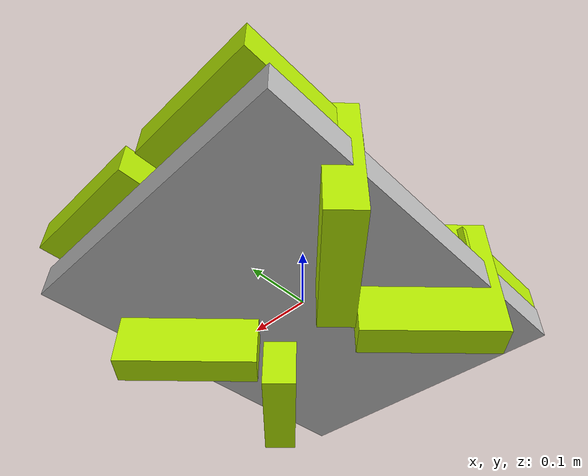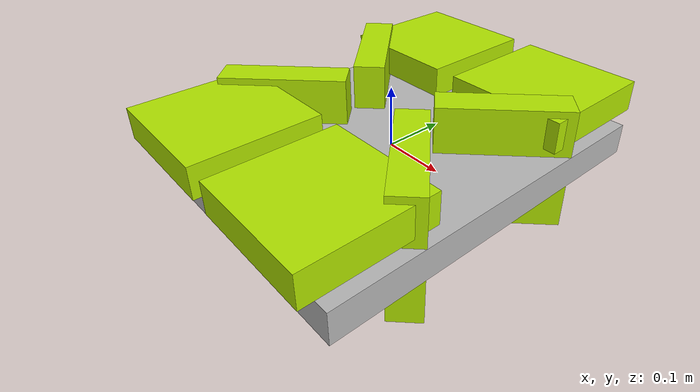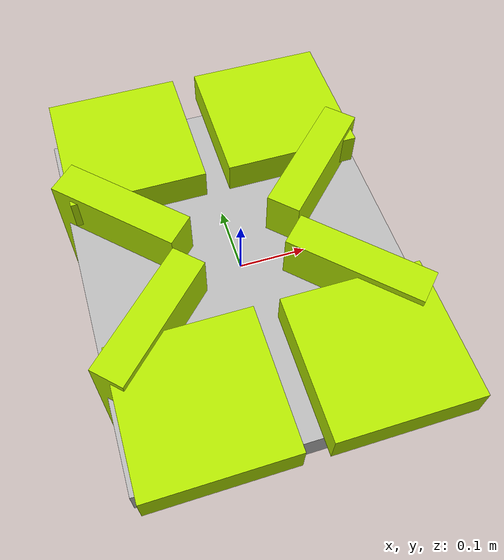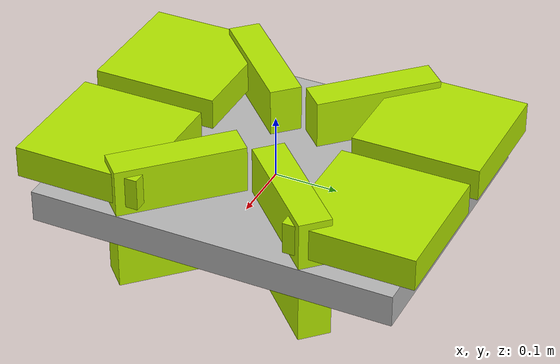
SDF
<?xml version='1.0' encoding='UTF-8'?>
<!-- Change all from gz-sim to ignition-gazebo-->
<!-- Change all to gz::sim to ignition::gazebo-->
<!-- Remove ArduPilotPlugin COMPLETELY-->
<!-- Add X150 Plugin -->
<sdf version="1.6">
  <model name="rov">
    <pose>0 0 0 0 0 0</pose>
    <!-- BlueROV2 thruster reference: http://www.ardusub.com/introduction/features.html -->
    <link name="base_link">
      <inertial>
        <pose>0.0 0.0 0.011 0 0 0</pose>
        <mass>13.0</mass>
        <inertia>
          <ixx>0.26</ixx>
          <ixy>0</ixy>
          <ixz>0</ixz>
          <iyy>0.23</iyy>
          <iyz>0</iyz>
          <izz>0.37</izz>
        </inertia>
      </inertial>

      <visual name="base_link_visual">
        <geometry>
          <box>
            <size>0.457 0.575 0.05</size>
          </box>
        </geometry>
      </visual>

      <!-- Collision volume * fluid_density == displaced mass, used by BuoyancyPlugin -->
      <collision name="base_link_collision">
        <pose>0.0 0.0 0.06 0 0 0</pose>
        <geometry>
          <box>
            <size>0.457 0.575 0.05</size>
          </box>
        </geometry>
      </collision>

      <!-- IMU sensor gyro and accel data -->
      <sensor name="imu_sensor" type="imu">
        <!-- Transform from the Gazebo body frame (x-forward, y-left, z-up)
             to the ArduPilot body frame (x-forward, y-right, z-down) -->
        <pose>0 0 0 3.142 0 0</pose>
        <always_on>1</always_on>
        <update_rate>10.0</update_rate>
      </sensor>

      <sensor name="X150" type="custom" ignition:type="X150">
        <always_on>0</always_on>
        <update_rate>0.1</update_rate>
        <visualize>true</visualize>
        <topic>/model/rov/X150_sim</topic>
        <ignition:X150>
          <noise type="gaussian">
            <mean>0.00001</mean>
            <stddev>0.00001</stddev>
          </noise>
        </ignition:X150>
      </sensor>

    </link>

    <!-- Hydrodynamics plugin -->
    <plugin
        filename="ignition-gazebo-hydrodynamics-system"
        name="ignition::gazebo::systems::Hydrodynamics">
      <link_name>base_link</link_name>
      <water_density>1000.0</water_density>
      <!-- Added mass: -->
      <xDotU>0</xDotU>
      <yDotV>0</yDotV>
      <zDotW>0</zDotW>
      <kDotP>0</kDotP>
      <mDotQ>0</mDotQ>
      <nDotR>0</nDotR>
      <!-- First order stability derivative: -->
      <xU>0</xU>
      <yV>0</yV>
      <zW>0</zW>
      <kP>0</kP>
      <mQ>0</mQ>
      <nR>0</nR>
      <!-- Second order stability derivative: -->
      <xUabsU>-58.42</xUabsU>
      <yVabsV>-55.137</yVabsV>
      <zWabsW>-124.818</zWabsW>
      <kPabsP>-4.0</kPabsP>
      <mQabsQ>-4.0</mQabsQ>
      <nRabsR>-4.0</nRabsR>
    </plugin>

    <plugin filename="ignition-gazebo-pose-publisher-system" name="ignition::gazebo::systems::PosePublisher">
      <publish_link_pose>false</publish_link_pose>
      <publish_collision_pose>false</publish_collision_pose>
      <publish_visual_pose>false</publish_visual_pose>
      <publish_sensor_pose>false</publish_sensor_pose>
      <publish_nested_model_pose>true</publish_nested_model_pose>
      <update_frequency>20</update_frequency>
      <use_pose_vector_msg>false</use_pose_vector_msg>
    </plugin>

    <link name="thruster1">
      <pose>0.14 -0.092 0.0 -1.571 1.571 -0.785</pose>
      <visual name="thruster_prop_visual">
        <pose>0 0 0 -1.571 0 0</pose>
        <geometry>
          <box>
            <size>0.2 0.05 0.2</size>
          </box>
        </geometry>
        <material>
          <ambient>0.5 0.75 0 1</ambient>
          <diffuse>0.7 0.9 0 1</diffuse>
          <emissive>0.1 0 0.1 1</emissive>
        </material>
      </visual>
      <inertial>
        <mass>0.002</mass>
        <inertia>
          <ixx>0.001</ixx>
          <ixy>0</ixy>
          <ixz>0</ixz>
          <iyy>0.001</iyy>
          <iyz>0</iyz>
          <izz>0.001</izz>
        </inertia>
      </inertial>
    </link>

    <link name="thruster2">
      <pose>0.14 0.092 0.0 -1.571 1.571 -2.356</pose>
      <visual name="thruster_prop_visual">
        <pose>0 0 0 -1.571 0 0</pose>
        <geometry>
          <box>
            <size>0.2 0.05 0.2</size>
          </box>
        </geometry>
        <material>
          <ambient>0.5 0.75 0 1</ambient>
          <diffuse>0.7 0.9 0 1</diffuse>
          <emissive>0.1 0 0.1 1</emissive>
        </material>
      </visual>
      <inertial>
        <mass>0.002</mass>
        <inertia>
          <ixx>0.001</ixx>
          <ixy>0</ixy>
          <ixz>0</ixz>
          <iyy>0.001</iyy>
          <iyz>0</iyz>
          <izz>0.001</izz>
        </inertia>
      </inertial>
    </link>

    <link name="thruster3">
      <pose>-0.15 -0.092 0.0 -1.571 1.571 0.785</pose>
      <visual name="thruster_prop_visual">
        <pose>0 0 0 1.571 0 0</pose>
        <geometry>
          <box>
            <size>0.2 0.05 0.2</size>
          </box>
        </geometry>
        <material>
          <ambient>0.5 0.75 0 1</ambient>
          <diffuse>0.7 0.9 0 1</diffuse>
          <emissive>0.1 0 0.1 1</emissive>
        </material>
      </visual>
      <inertial>
        <mass>0.002</mass>
        <inertia>
          <ixx>0.001</ixx>
          <ixy>0</ixy>
          <ixz>0</ixz>
          <iyy>0.001</iyy>
          <iyz>0</iyz>
          <izz>0.001</izz>
        </inertia>
      </inertial>
    </link>

    <link name="thruster4">
      <pose>-0.15 0.092 0.0 -1.571 1.571 2.356</pose>
      <visual name="thruster_prop_visual">
        <pose>0 0 0 1.571 0 0</pose>
        <geometry>
          <box>
            <size>0.2 0.05 0.2</size>
          </box>
        </geometry>
        <material>
          <ambient>0.5 0.75 0 1</ambient>
          <diffuse>0.7 0.9 0 1</diffuse>
          <emissive>0.1 0 0.1 1</emissive>
        </material>
      </visual>
      <inertial>
        <mass>0.002</mass>
        <inertia>
          <ixx>0.001</ixx>
          <ixy>0</ixy>
          <ixz>0</ixz>
          <iyy>0.001</iyy>
          <iyz>0</iyz>
          <izz>0.001</izz>
        </inertia>
      </inertial>
    </link>

    <link name="thruster5">
      <pose>0.118 -0.215 0.064 0 0 0</pose>
      <visual name="thruster_prop_visual">
        <pose>0 0 0 -1.571 0 1.571</pose>
        <geometry>
          <box>
            <size>0.2 0.05 0.2</size>
          </box>
        </geometry>
        <material>
          <ambient>0.5 0.75 0 1</ambient>
          <diffuse>0.7 0.9 0 1</diffuse>
          <emissive>0.1 0 0.1 1</emissive>
        </material>
      </visual>
      <inertial>
        <mass>0.002</mass>
        <inertia>
          <ixx>0.001</ixx>
          <ixy>0</ixy>
          <ixz>0</ixz>
          <iyy>0.001</iyy>
          <iyz>0</iyz>
          <izz>0.001</izz>
        </inertia>
      </inertial>
    </link>

    <link name="thruster6">
      <pose>0.118 0.215 0.064 0 0 0</pose>
      <visual name="thruster_prop_visual">
        <pose>0 0 0 1.571 0 1.571</pose>
        <geometry>
          <box>
            <size>0.2 0.05 0.2</size>
          </box>
        </geometry>
        <material>
          <ambient>0.5 0.75 0 1</ambient>
          <diffuse>0.7 0.9 0 1</diffuse>
          <emissive>0.1 0 0.1 1</emissive>
        </material>
      </visual>
      <inertial>
        <mass>0.002</mass>
        <inertia>
          <ixx>0.001</ixx>
          <ixy>0</ixy>
          <ixz>0</ixz>
          <iyy>0.001</iyy>
          <iyz>0</iyz>
          <izz>0.001</izz>
        </inertia>
      </inertial>
    </link>

    <link name="thruster7">
      <pose>-0.118 -0.215 0.064 0 0 0</pose>
      <visual name="thruster_prop_visual">
        <pose>0 0 0 1.571 0 1.571</pose>
        <geometry>
          <box>
            <size>0.2 0.05 0.2</size>
          </box>
        </geometry>
        <material>
          <ambient>0.5 0.75 0 1</ambient>
          <diffuse>0.7 0.9 0 1</diffuse>
          <emissive>0.1 0 0.1 1</emissive>
        </material>
      </visual>
      <inertial>
        <mass>0.002</mass>
        <inertia>
          <ixx>0.001</ixx>
          <ixy>0</ixy>
          <ixz>0</ixz>
          <iyy>0.001</iyy>
          <iyz>0</iyz>
          <izz>0.001</izz>
        </inertia>
      </inertial>
    </link>

    <link name="thruster8">
      <pose>-0.118 0.215 0.064 0 0 0</pose>
      <visual name="thruster_prop_visual">
        <pose>0 0 0 -1.571 0 1.571</pose>
        <geometry>
          <box>
            <size>0.2 0.05 0.2</size>
          </box>
        </geometry>
        <material>
          <ambient>0.5 0.75 0 1</ambient>
          <diffuse>0.7 0.9 0 1</diffuse>
          <emissive>0.1 0 0.1 1</emissive>
        </material>
      </visual>
      <inertial>
        <mass>0.002</mass>
        <inertia>
          <ixx>0.001</ixx>
          <ixy>0</ixy>
          <ixz>0</ixz>
          <iyy>0.001</iyy>
          <iyz>0</iyz>
          <izz>0.001</izz>
        </inertia>
      </inertial>
    </link>

    <joint name="thruster1_joint" type="revolute">
      <parent>base_link</parent>
      <child>thruster1</child>
      <axis>
        <xyz>0 0 -1</xyz>
      </axis>
    </joint>

    <joint name="thruster2_joint" type="revolute">
      <parent>base_link</parent>
      <child>thruster2</child>
      <axis>
        <xyz>0 0 -1</xyz>
      </axis>
    </joint>

    <joint name="thruster3_joint" type="revolute">
      <parent>base_link</parent>
      <child>thruster3</child>
      <axis>
        <xyz>0 0 -1</xyz>
      </axis>
    </joint>

    <joint name="thruster4_joint" type="revolute">
      <parent>base_link</parent>
      <child>thruster4</child>
      <axis>
        <xyz>0 0 -1</xyz>
      </axis>
    </joint>

    <joint name="thruster5_joint" type="revolute">
      <parent>base_link</parent>
      <child>thruster5</child>
      <axis>
        <xyz>0 0 -1</xyz>
      </axis>
    </joint>

    <joint name="thruster6_joint" type="revolute">
      <parent>base_link</parent>
      <child>thruster6</child>
      <axis>
        <xyz>0 0 -1</xyz>
      </axis>
    </joint>

    <joint name="thruster7_joint" type="revolute">
      <parent>base_link</parent>
      <child>thruster7</child>
      <axis>
        <xyz>0 0 -1</xyz>
      </axis>
    </joint>

    <joint name="thruster8_joint" type="revolute">
      <parent>base_link</parent>
      <child>thruster8</child>
      <axis>
        <xyz>0 0 -1</xyz>
      </axis>
    </joint>

    <plugin
        filename="ignition-gazebo-thruster-system"
        name="ignition::gazebo::systems::Thruster">
      <namespace>rov</namespace>
      <joint_name>thruster1_joint</joint_name>
      <thrust_coefficient>0.02</thrust_coefficient>
      <fluid_density>1000.0</fluid_density>
      <propeller_diameter>0.1</propeller_diameter>
      <velocity_control>true</velocity_control>
      <use_angvel_cmd>False</use_angvel_cmd>
    </plugin>

    <plugin
        filename="ignition-gazebo-thruster-system"
        name="ignition::gazebo::systems::Thruster">
      <namespace>rov</namespace>
      <joint_name>thruster2_joint</joint_name>
      <thrust_coefficient>0.02</thrust_coefficient>
      <fluid_density>1000.0</fluid_density>
      <propeller_diameter>0.1</propeller_diameter>
      <velocity_control>true</velocity_control>
      <use_angvel_cmd>False</use_angvel_cmd>
    </plugin>

    <plugin
        filename="ignition-gazebo-thruster-system"
        name="ignition::gazebo::systems::Thruster">
      <namespace>rov</namespace>
      <joint_name>thruster3_joint</joint_name>
      <!-- Reverse spin to balance torque -->
      <thrust_coefficient>-0.02</thrust_coefficient>
      <fluid_density>1000.0</fluid_density>
      <propeller_diameter>0.1</propeller_diameter>
      <velocity_control>true</velocity_control>
      <use_angvel_cmd>False</use_angvel_cmd>
    </plugin>

    <plugin
        filename="ignition-gazebo-thruster-system"
        name="ignition::gazebo::systems::Thruster">
      <namespace>rov</namespace>
      <joint_name>thruster4_joint</joint_name>
      <!-- Reverse spin to balance torque -->
      <thrust_coefficient>-0.02</thrust_coefficient>
      <fluid_density>1000.0</fluid_density>
      <propeller_diameter>0.1</propeller_diameter>
      <velocity_control>true</velocity_control>
      <use_angvel_cmd>False</use_angvel_cmd>
    </plugin>

    <plugin
        filename="ignition-gazebo-thruster-system"
        name="ignition::gazebo::systems::Thruster">
      <namespace>rov</namespace>
      <joint_name>thruster5_joint</joint_name>
      <thrust_coefficient>0.02</thrust_coefficient>
      <fluid_density>1000.0</fluid_density>
      <propeller_diameter>0.1</propeller_diameter>
      <velocity_control>true</velocity_control>
      <use_angvel_cmd>False</use_angvel_cmd>
    </plugin>

    <plugin
        filename="ignition-gazebo-thruster-system"
        name="ignition::gazebo::systems::Thruster">
      <namespace>rov</namespace>
      <joint_name>thruster6_joint</joint_name>
      <!-- Reverse spin to balance torque -->
      <thrust_coefficient>-0.02</thrust_coefficient>
      <fluid_density>1000.0</fluid_density>
      <propeller_diameter>0.1</propeller_diameter>
      <velocity_control>true</velocity_control>
      <use_angvel_cmd>False</use_angvel_cmd>
    </plugin>

    <plugin
        filename="ignition-gazebo-thruster-system"
        name="ignition::gazebo::systems::Thruster">
      <namespace>rov</namespace>
      <joint_name>thruster7_joint</joint_name>
      <!-- Reverse spin to balance torque -->
      <thrust_coefficient>-0.02</thrust_coefficient>
      <fluid_density>1000.0</fluid_density>
      <propeller_diameter>0.1</propeller_diameter>
      <velocity_control>true</velocity_control>
      <use_angvel_cmd>False</use_angvel_cmd>
    </plugin>

    <plugin
        filename="ignition-gazebo-thruster-system"
        name="ignition::gazebo::systems::Thruster">
      <namespace>rov</namespace>
      <joint_name>thruster8_joint</joint_name>
      <thrust_coefficient>0.02</thrust_coefficient>
      <fluid_density>1000.0</fluid_density>
      <propeller_diameter>0.1</propeller_diameter>
      <velocity_control>true</velocity_control>
      <use_angvel_cmd>False</use_angvel_cmd>
    </plugin>
  </model>
</sdf>
